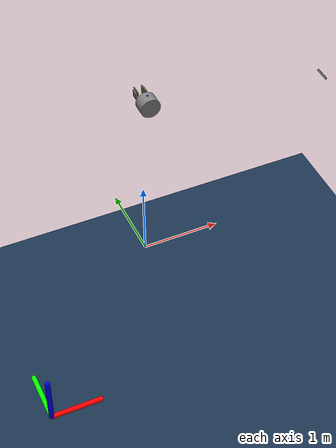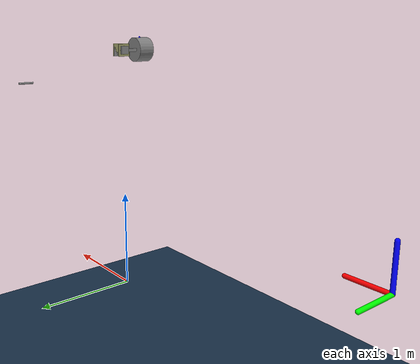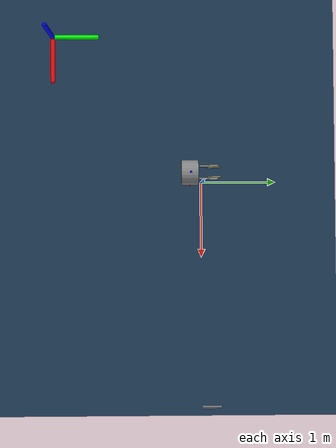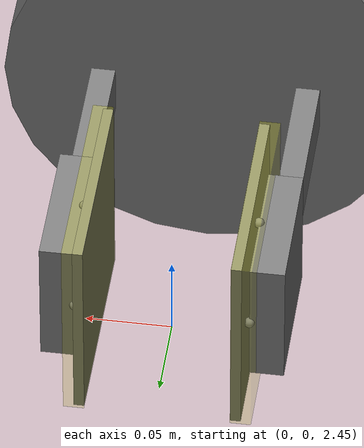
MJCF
<mujoco>
	<compiler angle="radian"
			inertiafromgeom="auto"
			texturedir="textures/"
			meshdir="mesh/visual/"/>
	<option timestep="1e-4"
			iterations="35"
			tolerance="1e-10"
			impratio="20"
			cone="elliptic" />
	<size njmax="10000" nconmax="5000" nstack="15000000"/>

	<default>
		<geom contype='1' conaffinity='1' condim='6' solref="2e-4 1" solimp=".995 .995 .01" friction="1.3 0.01 0.0005" />
		<joint armature="0.01" damping=".1"/>
		<default class="gripperTrans">
			<joint damping='30' />
		</default>
		<default class="gripperRot">
			<joint damping='65'/>
		</default>
		<default class="GRIPPER">
			<joint damping='15'/>
		</default>
	</default>

	<visual>
		<map fogstart="3" fogend="5" znear="0.05"/>
		<quality shadowsize="2048"/>
		<scale  framelength="2.5"
		framewidth="0.06"
		contactwidth="1.1"
		contactheight="0.01"
		forcewidth="0.01"
		/>
	</visual>

	<!--Assets-->
	<asset>
		<!--Textures-->
		<texture name="ur5_tex"     type="2d"       builtin="flat" height="32" width="32" rgb1="0.45 0.45 0.45" />
		<texture name="gripper_tex" type="2d"       builtin="flat" height="32" width="32" rgb1="0.45 0.45 0.45" rgb2="0 0 0"/>
		<texture name="bench_tex"   type="2d"       builtin="flat" height="32" width="32" rgb1="0.7 0.7 0.7" />
		<texture name="sky_tex"     type="skybox"   builtin="gradient" width="100" height="100" rgb1="1 1 1" rgb2="0.3 0.3 0.8" />
		<texture name="texgeom"     type="cube"     builtin="flat" mark="cross" width="127" height="1278" rgb1="0.8 0.6 0.4" rgb2="0.8 0.6 0.4" markrgb="1 1 1" random="0.01" />
		<texture name="floor_tex"   type="2d"        builtin="checker" rgb1=".2 .3 .4" rgb2=".1 .2 .3" width="100" height="100" />
		<texture name="wood"        type="cube"     file="wood2.png"/>
		<texture name="metal"        type="cube"     file="metal2.png"/>
		<!--Materials-->
		<material name="ur5_mat"        texture="ur5_tex"   shininess="0.9" specular="0.75" reflectance="0.3"/>
		<material name="gripper_mat"    texture="gripper_tex"   shininess="0.9" specular="0.75" reflectance="0.4"/>
		<material name='floor_mat'      texture="floor_tex"  shininess="0.8" texrepeat="10 10" specular="0.7"  reflectance="0.5" />
		<material name='geom'           texture="texgeom"   texuniform="true" />
		<material name="bench_mat"      texture="metal"   shininess="0.1" specular="0.5" reflectance="0.2"/>
		<material name="tablecube"      texture="wood" rgba=".8 .8 .8 1"/>
	</asset>

	<worldbody>
		<!--Lighting parameters-->
		<light name="light3" mode="targetbody" target="gripperLink_0" directional="true" pos="1 1 5" />

		<geom type='capsule' size='0.03 0.3' pos='-1.7 -2 0' rgba='1 0 0 1' quat='0.7071068  0 0.7071068 0' />
		<geom type='capsule' size='0.03 0.3' pos='-2 -1.7 0' rgba='0 1 0 1' quat='0.7071068  0.7071068 0 0' />
		<geom type='capsule' size='0.03 0.3' pos='-2 -2 0.3' rgba='0 0 1 1' />

		<!--Floor Property-->
		<geom name='floor' pos='0 0 -1.5' size='5 5 0.1'  type='plane' rgba='0.1 0.2 0.3 1' />

		<body name='camera' pos='2.4 0 2' euler="0 0.6 0" >
		<geom pos='0 0 0' type='box' size='0.01 0.1 0.01' density='10'  />
		<camera name='c1' fovy="55" pos="0 .01 .01">
		</camera>
		</body>

		<!-- Insert table here! -->

		<!-- GRIPPER -->
		<body name="gripperLink_0" pos="0 0 2.5" >
			<joint name="trans_x" type="slide" class="gripperTrans" pos="0 0 0" axis="1 0 0" />
			<joint name="trans_y" type="slide" class="gripperTrans" pos="0 0 0" axis="0 1 0" />
			<joint name="trans_z" type="slide" class="gripperTrans" pos="0 0 0" axis="0 0 1" />
			<joint name="rot_x" class="gripperRot" pos="0 0 0" axis="1 0 0" />
			<joint name="rot_y" class="gripperRot" pos="0 0 0" axis="0 1 0" />
			<joint name="rot_z" class="gripperRot" pos="0 0 0" axis="0 0 1" />

			<geom pos='0 -0.23 0' type='cylinder' size='0.12 0.08' quat='0.7071068 0.7071068 0 0' condim='3' density='10' />
			<geom pos='0.12 -0.23 0' type='sphere' size='0.01' rgba='1 0 0 1' density='1' />
			<geom pos='0 -0.22 0.12' type='sphere' size='0.01' rgba='0 0 1 1' density='1' />

			<body name='left_finger' pos='-0.06 -0.14 0' quat='1 0 0 0'>
				<joint name='l_f' type='slide' pos='0 0 0' axis='1 0 0' range='0 0.05' damping='10' limited='true' solreflimit='1e-3 1' solimplimit=".99 .99 .01" />
				<geom pos='0 0.05 0' type='box' size='0.007 0.05 0.015' condim='6' friction='1 0.02 0.0005' density='10'  />
				<!-- Fingertip -->
				<body name='left_fingertip' pos='0 0.14 0' quat='0.7071068 0 0.7071068 0'>
					<geom pos='0 0 0' type='box' size='0.04 0.04 0.01' condim='6'  friction='1 0.04 0.001' solref='1e-4 1' density='2000'  />
					<!-- Four anchor points for cross tendons, in order to implement shear force sensor -->
					<site name="left_cross_bottom_1" pos="0.04  0 0.01" type='sphere' size='0.003' />
					<site name="left_cross_bottom_2" pos="-0.04 0 0.01" type='sphere' size='0.003' />
					<site name="left_cross_bottom_3" pos="0  0.04 0.01" type='sphere' size='0.003' />
					<site name="left_cross_bottom_4" pos="0 -0.04 0.01" type='sphere' size='0.003' />
					<body name='left_finger_skin' pos='0 0 0.015' >
						<geom pos='0 0 0' name='left_tip' type='box' size='0.06 0.06 0.003'  solref='1e-4 1'  />
						<site pos='0 0 -0.003' type='box' size='0.061 0.061 0.006' name='leftFingerMainTouch' rgba='1 1 0 0.2' />
					</body>
				</body>
			</body>

			<body name='right_finger' pos='0.06 -0.14 0' quat='1 0 0 0'>
				<joint name='r_f' type='slide' pos='0 0 0' axis='-1 0 0' range='0 0.05' damping='10' limited='true'  solreflimit='1e-3 1' solimplimit=".99 .99 .01" />
				<geom pos='0 0.05 0' type='box' size='0.007 0.05 0.015' condim='6' friction='1 0.02 0.0005' density='10'  />
				<!-- Fingertip -->
				<body name='right_fingertip' pos='0 0.14 0' quat='-0.7071068 0 0.7071068 0'>
					<geom pos='0 0 0' type='box' size='0.04 0.04 0.01' condim='6'  friction='1 0.04 0.001' solref='1e-4 1' density='2000'  />
					<!-- Four anchor points for cross tendons, in order to implement shear force sensor -->
					<site name="right_cross_bottom_1" pos="0.04  0 0.01" type='sphere' size='0.003' />
					<site name="right_cross_bottom_2" pos="-0.04 0 0.01" type='sphere' size='0.003' />
					<site name="right_cross_bottom_3" pos="0  0.04 0.01" type='sphere' size='0.003' />
					<site name="right_cross_bottom_4" pos="0 -0.04 0.01" type='sphere' size='0.003' />
					<body name='right_finger_skin' pos='0 0 0.015' >
						<geom pos='0 0 0' name='right_tip' type='box' size='0.06 0.06 0.003'  solref='1e-4 1' />
						<site pos='0 0 -0.003' type='box' size='0.061 0.061 0.006' name='rightFingerMainTouch' rgba='1 1 0 0.2' />
					</body>
				</body>
			</body>
		</body>

	<!-- Insert velcro here! -->

	</worldbody>

	<tendon>

	<!-- Insert tendons here! -->
	</tendon>
	<!-- No damping term for velcro tendons -->

	<actuator>
		<!--UR5-->
		<position name='trans_x_p' joint='trans_x' kp="1300" forcerange="-400 400"/>
		<position name='trans_y_p' joint='trans_y' kp="1300" forcerange="-400 400"/>
		<position name='trans_z_p' joint='trans_z' kp="1300" forcerange="-400 400"/>
		<position name='rot_x_p' ctrllimited="true" ctrlrange="-3.14159 3.14159" joint='rot_x' forcerange="-350 350" kp="10" />
		<position name='rot_y_p' ctrllimited="true" ctrlrange="-3.14159 3.14159" joint='rot_y' forcerange="-350 350" kp="10" />
		<position name='rot_z_p' ctrllimited="true" ctrlrange="-3.14159 3.14159" joint='rot_z' forcerange="-350 350" kp="10" />
		<velocity name='trans_x_v' joint='trans_x' forcerange="-350 350" kv="130" />
		<velocity name='trans_y_v' joint='trans_y' forcerange="-350 350" kv="130" />
		<velocity name='trans_z_v' joint='trans_z' forcerange="-350 350" kv="130" />
		<velocity name='rot_x_v' joint='rot_x' forcerange="-350 350" kv="10" />
		<velocity name='rot_y_v' joint='rot_y' forcerange="-350 350" kv="10" />
		<velocity name='rot_z_v' joint='rot_z' forcerange="-350 350" kv="10" />

		<!--Gripper-->
		<position name='finger_p' joint="l_f" />
		<velocity name='finger_v' class="GRIPPER" joint='l_f' />
	</actuator>

	<equality>
		<joint name='fingers' joint1="r_f" joint2="l_f" polycoef='0 1 0 0 0' solref="3e-4 1" solimp=".99 .99 .01" />
	</equality>

	<contact>

		<!-- Insert contact here! -->
	</contact>

	<sensor>
		<force name='lf_main' site='leftFingerMainTouch' cutoff='800' />
		<force name='rf_main' site='rightFingerMainTouch' cutoff="800" />
		<torque name='lf_main_torque' site='leftFingerMainTouch' cutoff='800' />
		<torque name='rf_main_torque' site='rightFingerMainTouch' cutoff="800" />
		<!-- Always put these two tri-axis force sensor in the first,
		when adding new sensor keep in mind that force sensordata has three elements -->
	</sensor>

</mujoco>
